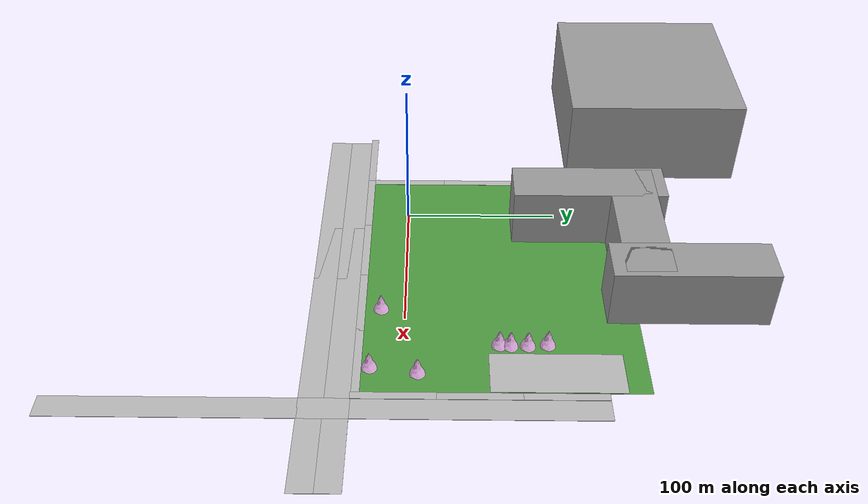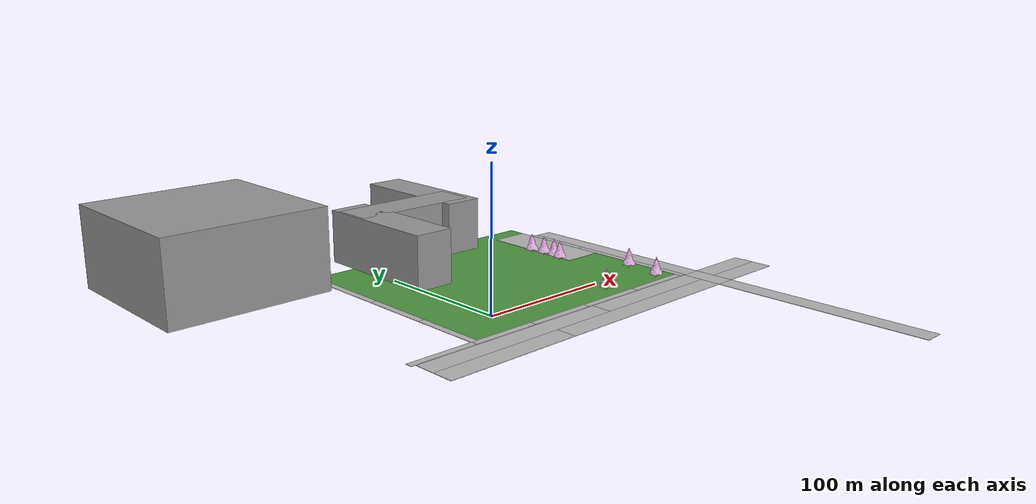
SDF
<sdf version="1.5">
 <world name="default">
  <scene>
   <sky><clouds><speed>4</speed></clouds></sky>
   <grid>false</grid>
   <origin_visual>false</origin_visual>
  </scene>
  <include><uri>model://sun</uri></include>
  <include><uri>model://ki_plane</uri><name>mbzirc_plane</name><pose>62.0 60.0 -0.1 0 0 0</pose></include>
  <include>
   <uri>model://ki_building</uri>
   <name>ki_building_1</name>
   <pose>-105.0 173.0 -0.0 0 0 0</pose>
  </include>
  <include>
   <uri>model://ki_building_2</uri>
   <name>ki_building_2</name>
   <pose>12.0 120.0 -0.0 0 0 0</pose>
  </include>
  <include>
   <uri>model://ki_building_2</uri>
   <name>ki_building_3</name>
   <pose>88.0 175.0 -0.0 0 0 0</pose>
  </include>
  <include>
   <uri>model://ki_building_2</uri>
   <name>ki_building_4</name>
   <pose>49.0 148.0 -0.0 0 0 -1.57079</pose>
  </include>
  <include><uri>model://sidewalk</uri><name>sidewalk_1</name><pose>-37.5 100.0 -0.15 0 0 0</pose></include>
  <include><uri>model://sidewalk</uri><name>sidewalk_2</name><pose>-37.5 50.0 -0.15 0 0 0</pose></include>
  <include><uri>model://sidewalk</uri><name>sidewalk_3</name><pose>-37.5 0.0 -0.15 0 0 0</pose></include>
  <include>
   <uri>model://sidewalk</uri>
   <name>sidewalk_4</name>
   <pose>-14.5 -27.0 -0.15 0 0 -1.57079</pose>
  </include>
  <include>
   <uri>model://sidewalk</uri>
   <name>sidewalk_5</name>
   <pose>35.5 -27.0 -0.15 0 0 -1.57079</pose>
  </include>
  <include>
   <uri>model://sidewalk</uri>
   <name>sidewalk_6</name>
   <pose>85.5 -27.0 -0.15 0 0 -1.57079</pose>
  </include>
  <include>
   <uri>model://sidewalk</uri>
   <name>sidewalk_7</name>
   <pose>-64.5 -27.0 -0.15 0 0 -1.57079</pose>
  </include>
  <include>
   <uri>model://sidewalk</uri>
   <name>sidewalk_8</name>
   <pose>134.5 -27.0 -0.15 0 0 -1.57079</pose>
  </include>
  <include><uri>model://sidewalk</uri><name>sidewalk_9</name><pose>162.0 -5.0 -0.15 0 0 0</pose></include>
  <include><uri>model://sidewalk</uri><name>sidewalk_10</name><pose>162.0 45.0 -0.15 0 0 0</pose></include>
  <include><uri>model://sidewalk</uri><name>sidewalk_11</name><pose>162.0 95.0 -0.15 0 0 0</pose></include>
  <include><uri>model://lane</uri><name>lane_1</name><pose>89.0 -37.0 -0.45 0 0 -1.57079</pose></include>
  <include><uri>model://lane</uri><name>lane_2</name><pose>89.0 -52.0 -0.45 0 0 -1.57079</pose></include>
  <include><uri>model://lane</uri><name>lane_3</name><pose>-11.0 -37.0 -0.45 0 0 -1.57079</pose></include>
  <include><uri>model://lane</uri><name>lane_4</name><pose>-11.0 -52.0 -0.45 0 0 -1.57079</pose></include>
  <include><uri>model://lane_cross</uri><name>lane_cross</name><pose>171.5 -44.5 -0.45 0 0 0</pose></include>
  <include><uri>model://lane</uri><name>lane_5</name><pose>171.5 45.0 -0.45 0 0 0</pose></include>
  <include><uri>model://lane</uri><name>lane_6</name><pose>171.5 -134.0 -0.45 0 0 0</pose></include>
  <include><uri>model://lane_50</uri><name>lane_50_1</name><pose>204.0 -37.0 -0.45 0 0 -1.57079</pose></include>
  <include><uri>model://lane_50</uri><name>lane_50_2</name><pose>204.0 -52.0 -0.45 0 0 -1.57079</pose></include>
  <include><uri>model://parking_lot</uri><name>parking_lot</name><pose>144.0 91.0 0.0 0 0 0</pose></include>
  <include><uri>model://KI_tree</uri><name>KI_tree_1</name><pose>125.0 57.5 0.0 0 0 0</pose></include>
  <include><uri>model://KI_tree</uri><name>KI_tree_2</name><pose>125.6 64.1 0.0 0 0 0</pose></include>
  <include><uri>model://KI_tree</uri><name>KI_tree_3</name><pose>125.5 74.5 0.0 0 0 0</pose></include>
  <include><uri>model://KI_tree</uri><name>KI_tree_4</name><pose>124.6 86.5 0.0 0 0 0</pose></include>
  <include><uri>model://KI_tree</uri><name>KI_tree_5</name><pose>147.6 8.8 0.0 0 0 0</pose></include>
  <include><uri>model://KI_tree</uri><name>KI_tree_6</name><pose>143.5 -19.5 0.0 0 0 0</pose></include>
  <include><uri>model://KI_tree</uri><name>KI_tree_7</name><pose>95.1 -14.5 0.0 0 0 0</pose></include>
  <physics name="default_physics" default="0" type="ode">
   <gravity>0 0 -9.8066</gravity>
   <ode>
    <solver>
     <type>quick</type>
     <iters>10</iters>
     <sor>1.3</sor>
     <use_dynamic_moi_rescaling>0</use_dynamic_moi_rescaling>
    </solver>
    <constraints>
     <cfm>0</cfm>
     <erp>0.2</erp>
     <contact_max_correcting_vel>100</contact_max_correcting_vel>
     <contact_surface_layer>0.001</contact_surface_layer>
    </constraints>
   </ode>
   <max_step_size>0.004</max_step_size>
   <real_time_factor>1</real_time_factor>
   <real_time_update_rate>250</real_time_update_rate>
   <magnetic_field>6.0e-6 2.3e-5 -4.2e-5</magnetic_field>
  </physics>
 </world>
</sdf>

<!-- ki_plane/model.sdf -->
<sdf version="1.5">
  <model name="ki_plane">
    <static>true</static>
    <link name="link">
      <collision name="collision">
        <geometry>
          <box>
            <size>195 170 .1</size>
          </box>
        </geometry>
      </collision>
      <visual name="visual">
        <cast_shadows>false</cast_shadows>
        <geometry>
          <box>
            <size>195 170 .1</size>
          </box>
        </geometry>
        <material>
          <script>
            <uri>model://ki_plane/materials/scripts</uri>
            <uri>model://ki_plane/materials/textures</uri>
            <name>vrc/grass</name>
          </script>
        </material>
      </visual>
    </link>
  </model>
</sdf>

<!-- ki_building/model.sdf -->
<sdf version="1.5">
  <model name="ki_building">
    <static>true</static>
    <link name="link">
      <pose>0 0 30.0 0 0 0</pose>
      <collision name="collision">
        <geometry>
          <box>
            <size>120 120 60</size>
          </box>
        </geometry>
      </collision>
      <visual name="visual">
        <geometry>
          <box>
            <size>120 120 60</size>
          </box>
        </geometry>
        <material>
          <script>
            <name>Gazebo/Grey</name>
            <uri>file://media/materials/scripts/gazebo.material</uri>
          </script>
        </material>
      </visual>
    </link>
  </model>
</sdf>

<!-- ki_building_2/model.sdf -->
<sdf version="1.5">
  <model name="ki_building_2">
    <static>true</static>
    <link name="link">
      <pose>0 0 20.0 0 0 0</pose>
      <collision name="collision">
        <geometry>
          <box>
            <size>30 100 40</size>
          </box>
        </geometry>
      </collision>
      <visual name="visual">
        <geometry>
          <box>
            <size>30 100 40</size>
          </box>
        </geometry>
        <material>
          <script>
            <name>Gazebo/Grey</name>
            <uri>file://media/materials/scripts/gazebo.material</uri>
          </script>
        </material>
      </visual>
    </link>
  </model>
</sdf>

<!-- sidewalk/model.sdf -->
<sdf version="1.5">
  <model name="sidewalk">
    <static>true</static>
    <link name="link">
      <collision name="collision">
        <geometry>
          <box>
            <size>5 50 .3</size>
          </box>
        </geometry>
      </collision>
      <visual name="visual">
        <cast_shadows>false</cast_shadows>
        <geometry>
          <box>
            <size>5 50 .3</size>
          </box>
        </geometry>
        <material>
          <script>
            <uri>model://sidewalk/materials/scripts</uri>
            <uri>model://sidewalk/materials/textures</uri>
            <name>vrc/sidewalk</name>
          </script>
        </material>
      </visual>
    </link>
  </model>
</sdf>

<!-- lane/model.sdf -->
<sdf version="1.5">
  <model name="lane">
    <static>true</static>
    <link name="link">
      <collision name="collision">
        <geometry>
          <box>
            <size>15 150 .3</size>
          </box>
        </geometry>
      </collision>
      <visual name="visual">
        <cast_shadows>false</cast_shadows>
        <geometry>
          <box>
            <size>15 150 .3</size>
          </box>
        </geometry>
        <material>
          <script>
            <uri>model://lane/materials/scripts</uri>
            <uri>model://lane/materials/textures</uri>
            <name>vrc/lane</name>
          </script>
        </material>
      </visual>
    </link>
  </model>
</sdf>

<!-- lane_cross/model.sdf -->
<sdf version="1.5">
  <model name="lane_cross">
    <static>true</static>
    <link name="link">
      <collision name="collision">
        <geometry>
          <box>
            <size>15 30 .3</size>
          </box>
        </geometry>
      </collision>
      <visual name="visual">
        <cast_shadows>false</cast_shadows>
        <geometry>
          <box>
            <size>15 30 .3</size>
          </box>
        </geometry>
        <material>
          <script>
            <uri>model://lane_cross/materials/scripts</uri>
            <uri>model://lane_cross/materials/textures</uri>
            <name>vrc/lane_cross</name>
          </script>
        </material>
      </visual>
    </link>
  </model>
</sdf>

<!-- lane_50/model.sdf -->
<sdf version="1.5">
  <model name="lane_50">
    <static>true</static>
    <link name="link">
      <collision name="collision">
        <geometry>
          <box>
            <size>15 50 .3</size>
          </box>
        </geometry>
      </collision>
      <visual name="visual">
        <cast_shadows>false</cast_shadows>
        <geometry>
          <box>
            <size>15 50 .3</size>
          </box>
        </geometry>
        <material>
          <script>
            <uri>model://lane_50/materials/scripts</uri>
            <uri>model://lane_50/materials/textures</uri>
            <name>vrc/lane</name>
          </script>
        </material>
      </visual>
    </link>
  </model>
</sdf>

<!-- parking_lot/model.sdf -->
<sdf version="1.5">
  <model name="parking_lot">
    <static>true</static>
    <link name="link">
      <collision name="collision">
        <geometry>
          <box>
            <size>30 80 .3</size>
          </box>
        </geometry>
      </collision>
      <visual name="visual">
        <cast_shadows>false</cast_shadows>
        <geometry>
          <box>
            <size>30 80 .3</size>
          </box>
        </geometry>
        <material>
          <script>
            <uri>model://parking_lot/materials/scripts</uri>
            <uri>model://parking_lot/materials/textures</uri>
            <name>vrc/lane_cross</name>
          </script>
        </material>
      </visual>
    </link>
  </model>
</sdf>

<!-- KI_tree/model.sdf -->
<sdf version="1.6">
  <model name="KI_tree">
    <static>true</static>
    <link name="link">
      <collision name="collision">
        <geometry>
          <mesh>
            <scale>3.0 3.0 3.0</scale>
            <uri>model://KI_tree/meshes/pine_tree.dae</uri>
          </mesh>
        </geometry>
      </collision>
      <visual name="branch">
        <geometry>
          <mesh>
            <scale>3.0 3.0 3.0</scale>
            <uri>model://KI_tree/meshes/pine_tree.dae</uri>
            <submesh>
              <name>Branch</name>
            </submesh>
          </mesh>
        </geometry>
        <material>
          <script>
            <uri>model://KI_tree/materials/scripts/</uri>
            <uri>model://KI_tree/materials/textures/</uri>
            <name>KI_tree/Branch</name>
          </script>
        </material>
      </visual>
      <visual name="bark">
        <geometry>
          <mesh>
            <scale>3.0 3.0 3.0</scale>
            <uri>model://KI_tree/meshes/pine_tree.dae</uri>
            <submesh>
              <name>Bark</name>
            </submesh>
          </mesh>
        </geometry>
        <material>
          <script>
            <uri>model://KI_tree/materials/scripts/</uri>
            <uri>model://KI_tree/materials/textures/</uri>
            <name>KI_tree/Bark</name>
          </script>
        </material>
      </visual>
    </link>
  </model>
</sdf>
